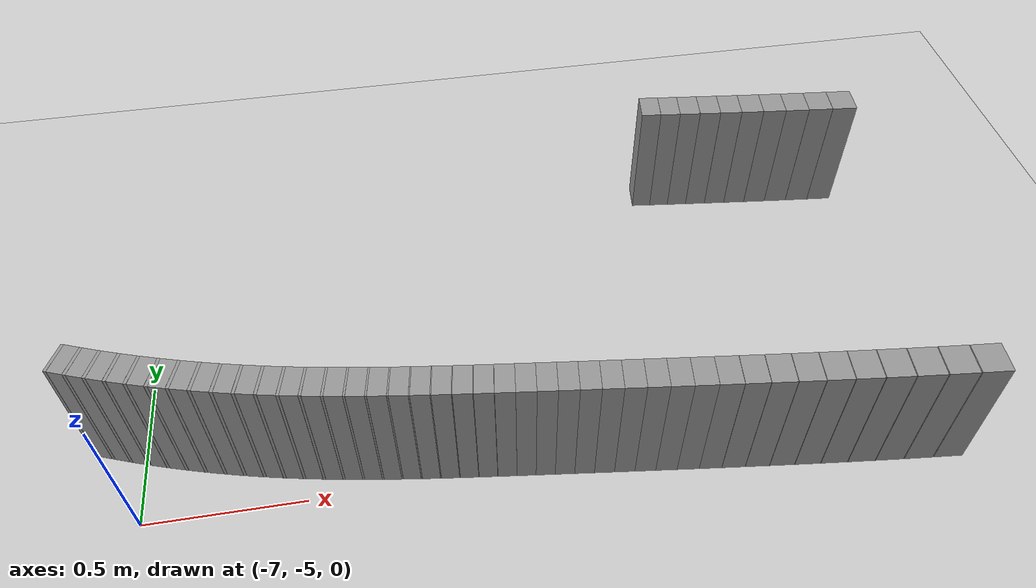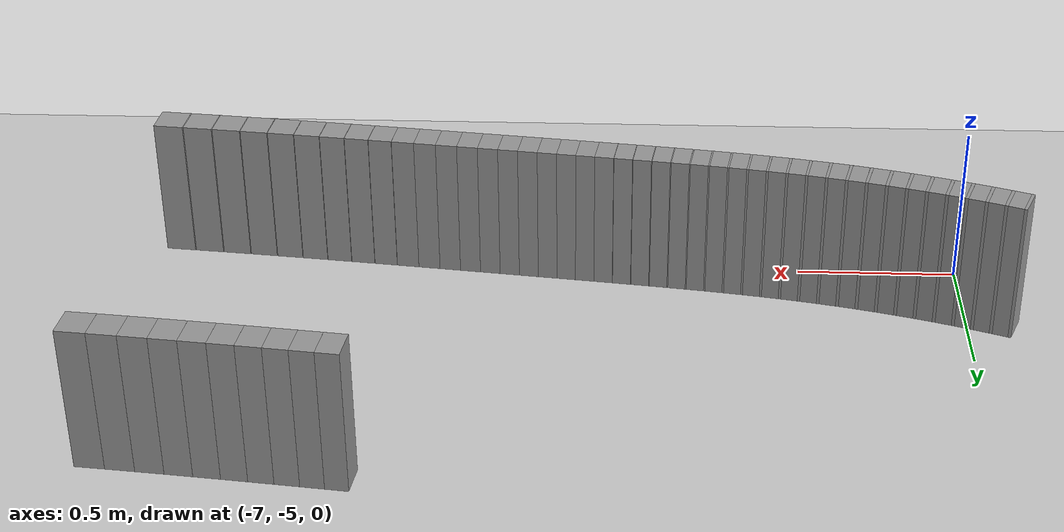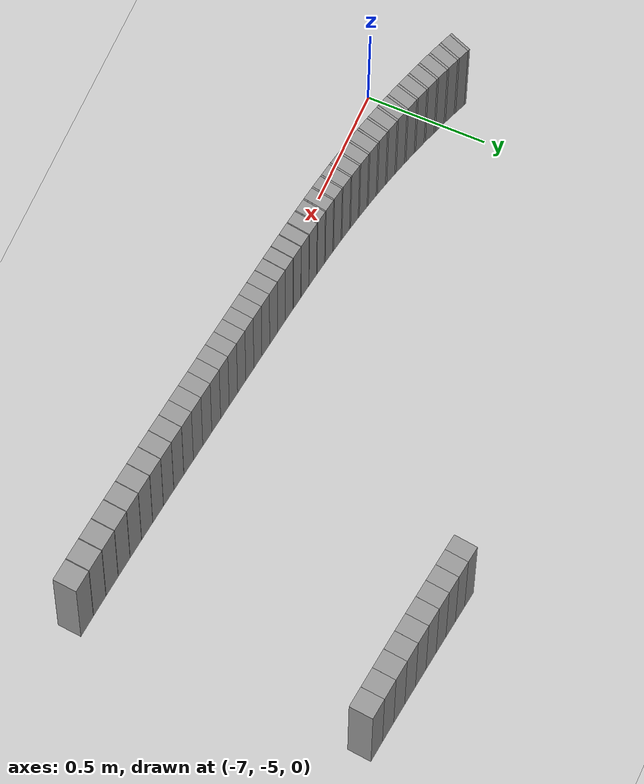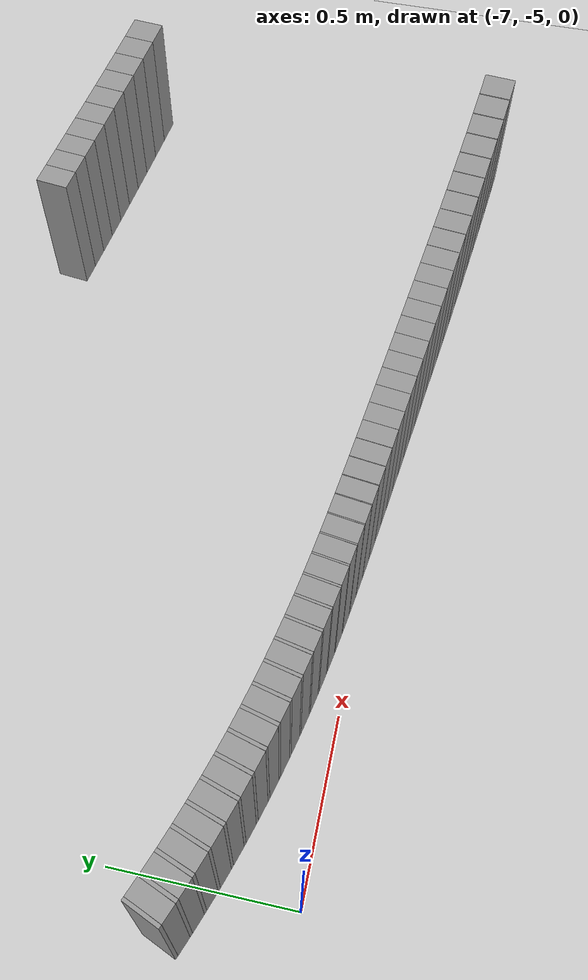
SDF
<sdf version="1.6">
 <world name="default">
  <include><uri>model://ground_plane</uri></include>
  <include><uri>model://sun</uri></include>
  <model name="wall_482_outward">
   <static>true</static>
   <link name="link">
    <collision name="collision">
     <geometry><box><size>0.06861094419086596 0.1 0.45</size></box></geometry>
    </collision>
    <visual name="visual">
     <geometry><box><size>0.06861094419086596 0.1 0.45</size></box></geometry>
     <material>
      <script><uri>file://media/materials/scripts/gazebo.material</uri><name>Gazebo/Gray</name></script>
     </material>
    </visual>
   </link>
   <pose>-5.172492075268798 -3.843492306528284 0.225 0 0 -0.11947311712528509</pose>
  </model>
  <model name="wall_483_outward">
   <static>true</static>
   <link name="link">
    <collision name="collision">
     <geometry><box><size>0.07060969709330193 0.1 0.45</size></box></geometry>
    </collision>
    <visual name="visual">
     <geometry><box><size>0.07060969709330193 0.1 0.45</size></box></geometry>
     <material>
      <script><uri>file://media/materials/scripts/gazebo.material</uri><name>Gazebo/Gray</name></script>
     </material>
    </visual>
   </link>
   <pose>-5.103373837394615 -3.8517545554409596 0.225 0 0 -0.11848774869774963</pose>
  </model>
  <model name="wall_484_outward">
   <static>true</static>
   <link name="link">
    <collision name="collision">
     <geometry><box><size>0.07279156137224302 0.1 0.45</size></box></geometry>
    </collision>
    <visual name="visual">
     <geometry><box><size>0.07279156137224302 0.1 0.45</size></box></geometry>
     <material>
      <script><uri>file://media/materials/scripts/gazebo.material</uri><name>Gazebo/Gray</name></script>
     </material>
    </visual>
   </link>
   <pose>-5.032170591647812 -3.8601852152544325 0.225 0 0 -0.11723934509404686</pose>
  </model>
  <model name="wall_485_outward">
   <static>true</static>
   <link name="link">
    <collision name="collision">
     <geometry><box><size>0.07512003442279466 0.1 0.45</size></box></geometry>
    </collision>
    <visual name="visual">
     <geometry><box><size>0.07512003442279466 0.1 0.45</size></box></geometry>
     <material>
      <script><uri>file://media/materials/scripts/gazebo.material</uri><name>Gazebo/Gray</name></script>
     </material>
    </visual>
   </link>
   <pose>-4.95871565192627 -3.868777568334581 0.225 0 0 -0.11567585199939497</pose>
  </model>
  <model name="wall_486_outward">
   <static>true</static>
   <link name="link">
    <collision name="collision">
     <geometry><box><size>0.07754253653207109 0.1 0.45</size></box></geometry>
    </collision>
    <visual name="visual">
     <geometry><box><size>0.07754253653207109 0.1 0.45</size></box></geometry>
     <material>
      <script><uri>file://media/materials/scripts/gazebo.material</uri><name>Gazebo/Gray</name></script>
     </material>
    </visual>
   </link>
   <pose>-4.882885987074841 -3.8775137991064437 0.225 0 0 -0.11376037422491422</pose>
  </model>
  <model name="wall_487_outward">
   <static>true</static>
   <link name="link">
    <collision name="collision">
     <geometry><box><size>0.0800005259456857 0.1 0.45</size></box></geometry>
    </collision>
    <visual name="visual">
     <geometry><box><size>0.0800005259456857 0.1 0.45</size></box></geometry>
     <material>
      <script><uri>file://media/materials/scripts/gazebo.material</uri><name>Gazebo/Gray</name></script>
     </material>
    </visual>
   </link>
   <pose>-4.804613143002355 -3.886362957032255 0.225 0 0 -0.111430504181167</pose>
  </model>
  <model name="wall_488_outward">
   <static>true</static>
   <link name="link">
    <collision name="collision">
     <geometry><box><size>0.08243139041206962 0.1 0.45</size></box></geometry>
    </collision>
    <visual name="visual">
     <geometry><box><size>0.08243139041206962 0.1 0.45</size></box></geometry>
     <material>
      <script><uri>file://media/materials/scripts/gazebo.material</uri><name>Gazebo/Gray</name></script>
     </material>
    </visual>
   </link>
   <pose>-4.723888277368331 -3.8952800834741588 0.225 0 0 -0.10864549361261396</pose>
  </model>
  <model name="wall_489_outward">
   <static>true</static>
   <link name="link">
    <collision name="collision">
     <geometry><box><size>0.08477118456679424 0.1 0.45</size></box></geometry>
    </collision>
    <visual name="visual">
     <geometry><box><size>0.08477118456679424 0.1 0.45</size></box></geometry>
     <material>
      <script><uri>file://media/materials/scripts/gazebo.material</uri><name>Gazebo/Gray</name></script>
     </material>
    </visual>
   </link>
   <pose>-4.640765049518221 -3.9042067529316924 0.225 0 0 -0.10536203316826591</pose>
  </model>
  <model name="wall_490_outward">
   <static>true</static>
   <link name="link">
    <collision name="collision">
     <geometry><box><size>0.08695825104490171 0.1 0.45</size></box></geometry>
    </collision>
    <visual name="visual">
     <geometry><box><size>0.08695825104490171 0.1 0.45</size></box></geometry>
     <material>
      <script><uri>file://media/materials/scripts/gazebo.material</uri><name>Gazebo/Gray</name></script>
     </material>
    </visual>
   </link>
   <pose>-4.5553593944780495 -3.913072255655973 0.225 0 0 -0.10155481413516705</pose>
  </model>
  <model name="wall_491_outward">
   <static>true</static>
   <link name="link">
    <collision name="collision">
     <geometry><box><size>0.08894354809368248 0.1 0.45</size></box></geometry>
    </collision>
    <visual name="visual">
     <geometry><box><size>0.08894354809368248 0.1 0.45</size></box></geometry>
     <material>
      <script><uri>file://media/materials/scripts/gazebo.material</uri><name>Gazebo/Gray</name></script>
     </material>
    </visual>
   </link>
   <pose>-4.467842444731072 -3.921796225169974 0.225 0 0 -0.0972042447169439</pose>
  </model>
  <model name="wall_595_inward">
   <static>true</static>
   <link name="link">
    <collision name="collision">
     <geometry><box><size>0.010058270836882448 0.1 0.45</size></box></geometry>
    </collision>
    <visual name="visual">
     <geometry><box><size>0.010058270836882448 0.1 0.45</size></box></geometry>
     <material>
      <script><uri>file://media/materials/scripts/gazebo.material</uri><name>Gazebo/Gray</name></script>
     </material>
    </visual>
   </link>
   <pose>-7.1435456109985065 -4.681929218626349 0.225 0 0 -0.3796555107484276</pose>
  </model>
  <model name="wall_596_inward">
   <static>true</static>
   <link name="link">
    <collision name="collision">
     <geometry><box><size>0.04899998314293597 0.1 0.45</size></box></geometry>
    </collision>
    <visual name="visual">
     <geometry><box><size>0.04899998314293597 0.1 0.45</size></box></geometry>
     <material>
      <script><uri>file://media/materials/scripts/gazebo.material</uri><name>Gazebo/Gray</name></script>
     </material>
    </visual>
   </link>
   <pose>-7.116043877710599 -4.692681676497608 0.225 0 0 -0.37127352023470606</pose>
  </model>
  <model name="wall_597_inward">
   <static>true</static>
   <link name="link">
    <collision name="collision">
     <geometry><box><size>0.010081163821849386 0.1 0.45</size></box></geometry>
    </collision>
    <visual name="visual">
     <geometry><box><size>0.010081163821849386 0.1 0.45</size></box></geometry>
     <material>
      <script><uri>file://media/materials/scripts/gazebo.material</uri><name>Gazebo/Gray</name></script>
     </material>
    </visual>
   </link>
   <pose>-7.0885008223423425 -4.703359544577519 0.225 0 0 -0.36287245156178727</pose>
  </model>
  <model name="wall_598_inward">
   <static>true</static>
   <link name="link">
    <collision name="collision">
     <geometry><box><size>0.04963032514261689 0.1 0.45</size></box></geometry>
    </collision>
    <visual name="visual">
     <geometry><box><size>0.04963032514261689 0.1 0.45</size></box></geometry>
     <material>
      <script><uri>file://media/materials/scripts/gazebo.material</uri><name>Gazebo/Gray</name></script>
     </material>
    </visual>
   </link>
   <pose>-7.0605160713188075 -4.713761965483187 0.225 0 0 -0.35447138288890684</pose>
  </model>
  <model name="wall_599_inward">
   <static>true</static>
   <link name="link">
    <collision name="collision">
     <geometry><box><size>0.01008082210487429 0.1 0.45</size></box></geometry>
    </collision>
    <visual name="visual">
     <geometry><box><size>0.01008082210487429 0.1 0.45</size></box></geometry>
     <material>
      <script><uri>file://media/materials/scripts/gazebo.material</uri><name>Gazebo/Gray</name></script>
     </material>
    </visual>
   </link>
   <pose>-7.032502085524978 -4.724084903495362 0.225 0 0 -0.3460705989902216</pose>
  </model>
  <model name="wall_600_inward">
   <static>true</static>
   <link name="link">
    <collision name="collision">
     <geometry><box><size>0.0502008784655813 0.1 0.45</size></box></geometry>
    </collision>
    <visual name="visual">
     <geometry><box><size>0.0502008784655813 0.1 0.45</size></box></geometry>
     <material>
      <script><uri>file://media/materials/scripts/gazebo.material</uri><name>Gazebo/Gray</name></script>
     </material>
    </visual>
   </link>
   <pose>-7.004077508980517 -4.734110140428442 0.225 0 0 -0.3376698150914799</pose>
  </model>
  <model name="wall_601_inward">
   <static>true</static>
   <link name="link">
    <collision name="collision">
     <geometry><box><size>0.010071953331509802 0.1 0.45</size></box></geometry>
    </collision>
    <visual name="visual">
     <geometry><box><size>0.010071953331509802 0.1 0.45</size></box></geometry>
     <material>
      <script><uri>file://media/materials/scripts/gazebo.material</uri><name>Gazebo/Gray</name></script>
     </material>
    </visual>
   </link>
   <pose>-6.975629085126776 -4.744054075181482 0.225 0 0 -0.32927642209786356</pose>
  </model>
  <model name="wall_602_inward">
   <static>true</static>
   <link name="link">
    <collision name="collision">
     <geometry><box><size>0.050702583329581816 0.1 0.45</size></box></geometry>
    </collision>
    <visual name="visual">
     <geometry><box><size>0.050702583329581816 0.1 0.45</size></box></geometry>
     <material>
      <script><uri>file://media/materials/scripts/gazebo.material</uri><name>Gazebo/Gray</name></script>
     </material>
    </visual>
   </link>
   <pose>-6.946806365723105 -4.753678415610709 0.225 0 0 -0.32088302910416455</pose>
  </model>
  <model name="wall_603_inward">
   <static>true</static>
   <link name="link">
    <collision name="collision">
     <geometry><box><size>0.010040300871055126 0.1 0.45</size></box></geometry>
    </collision>
    <visual name="visual">
     <geometry><box><size>0.010040300871055126 0.1 0.45</size></box></geometry>
     <material>
      <script><uri>file://media/materials/scripts/gazebo.material</uri><name>Gazebo/Gray</name></script>
     </material>
    </visual>
   </link>
   <pose>-6.917972083494023 -4.763217794733299 0.225 0 0 -0.31251601408709373</pose>
  </model>
  <model name="wall_604_inward">
   <static>true</static>
   <link name="link">
    <collision name="collision">
     <geometry><box><size>0.0511335097325698 0.1 0.45</size></box></geometry>
    </collision>
    <visual name="visual">
     <geometry><box><size>0.0511335097325698 0.1 0.45</size></box></geometry>
     <material>
      <script><uri>file://media/materials/scripts/gazebo.material</uri><name>Gazebo/Gray</name></script>
     </material>
    </visual>
   </link>
   <pose>-6.888801797998408 -4.772418024881566 0.225 0 0 -0.30414899907004933</pose>
  </model>
  <model name="wall_605_inward">
   <static>true</static>
   <link name="link">
    <collision name="collision">
     <geometry><box><size>0.009999772530434358 0.1 0.45</size></box></geometry>
    </collision>
    <visual name="visual">
     <geometry><box><size>0.009999772530434358 0.1 0.45</size></box></geometry>
     <material>
      <script><uri>file://media/materials/scripts/gazebo.material</uri><name>Gazebo/Gray</name></script>
     </material>
    </visual>
   </link>
   <pose>-6.859625787577816 -4.781532359147205 0.225 0 0 -0.295815758847655</pose>
  </model>
  <model name="wall_606_inward">
   <static>true</static>
   <link name="link">
    <collision name="collision">
     <geometry><box><size>0.05149814726125242 0.1 0.45</size></box></geometry>
    </collision>
    <visual name="visual">
     <geometry><box><size>0.05149814726125242 0.1 0.45</size></box></geometry>
     <material>
      <script><uri>file://media/materials/scripts/gazebo.material</uri><name>Gazebo/Gray</name></script>
     </material>
    </visual>
   </link>
   <pose>-6.8301507229937535 -4.790290792925335 0.225 0 0 -0.2874825186252262</pose>
  </model>
  <model name="wall_607_inward">
   <static>true</static>
   <link name="link">
    <collision name="collision">
     <geometry><box><size>0.009927208510987197 0.1 0.45</size></box></geometry>
    </collision>
    <visual name="visual">
     <geometry><box><size>0.009927208510987197 0.1 0.45</size></box></geometry>
     <material>
      <script><uri>file://media/materials/scripts/gazebo.material</uri><name>Gazebo/Gray</name></script>
     </material>
    </visual>
   </link>
   <pose>-6.800686991492103 -4.798959608412943 0.225 0 0 -0.27920975050352254</pose>
  </model>
  <model name="wall_608_inward">
   <static>true</static>
   <link name="link">
    <collision name="collision">
     <geometry><box><size>0.05180707902319999 0.1 0.45</size></box></geometry>
    </collision>
    <visual name="visual">
     <geometry><box><size>0.05180707902319999 0.1 0.45</size></box></geometry>
     <material>
      <script><uri>file://media/materials/scripts/gazebo.material</uri><name>Gazebo/Gray</name></script>
     </material>
    </visual>
   </link>
   <pose>-6.77095701746246 -4.8072602354426355 0.225 0 0 -0.2709369823817495</pose>
  </model>
  <model name="wall_609_inward">
   <static>true</static>
   <link name="link">
    <collision name="collision">
     <geometry><box><size>0.009806839829467652 0.1 0.45</size></box></geometry>
    </collision>
    <visual name="visual">
     <geometry><box><size>0.009806839829467652 0.1 0.45</size></box></geometry>
     <material>
      <script><uri>file://media/materials/scripts/gazebo.material</uri><name>Gazebo/Gray</name></script>
     </material>
    </visual>
   </link>
   <pose>-6.741263311934598 -4.815466581638888 0.225 0 0 -0.262764524885656</pose>
  </model>
  <model name="wall_610_inward">
   <static>true</static>
   <link name="link">
    <collision name="collision">
     <geometry><box><size>0.05207625270528953 0.1 0.45</size></box></geometry>
    </collision>
    <visual name="visual">
     <geometry><box><size>0.05207625270528953 0.1 0.45</size></box></geometry>
     <material>
      <script><uri>file://media/materials/scripts/gazebo.material</uri><name>Gazebo/Gray</name></script>
     </material>
    </visual>
   </link>
   <pose>-6.711329382697597 -4.82329796967337 0.225 0 0 -0.25459206738965473</pose>
  </model>
  <model name="wall_611_inward">
   <static>true</static>
   <link name="link">
    <collision name="collision">
     <geometry><box><size>0.009630620012981188 0.1 0.45</size></box></geometry>
    </collision>
    <visual name="visual">
     <geometry><box><size>0.009630620012981188 0.1 0.45</size></box></geometry>
     <material>
      <script><uri>file://media/materials/scripts/gazebo.material</uri><name>Gazebo/Gray</name></script>
     </material>
    </visual>
   </link>
   <pose>-6.6814608897011745 -4.831030988842068 0.225 0 0 -0.24656646455720027</pose>
  </model>
  <model name="wall_612_inward">
   <static>true</static>
   <link name="link">
    <collision name="collision">
     <geometry><box><size>0.05232601574736666 0.1 0.45</size></box></geometry>
    </collision>
    <visual name="visual">
     <geometry><box><size>0.05232601574736666 0.1 0.45</size></box></geometry>
     <material>
      <script><uri>file://media/materials/scripts/gazebo.material</uri><name>Gazebo/Gray</name></script>
     </material>
    </visual>
   </link>
   <pose>-6.651369042637373 -4.838388216880865 0.225 0 0 -0.23854086172474392</pose>
  </model>
  <model name="wall_613_inward">
   <static>true</static>
   <link name="link">
    <collision name="collision">
     <geometry><box><size>0.009363183845680651 0.1 0.45</size></box></geometry>
    </collision>
    <visual name="visual">
     <geometry><box><size>0.009363183845680651 0.1 0.45</size></box></geometry>
     <material>
      <script><uri>file://media/materials/scripts/gazebo.material</uri><name>Gazebo/Gray</name></script>
     </material>
    </visual>
   </link>
   <pose>-6.621389352521117 -4.8456408067629955 0.225 0 0 -0.2307381293451404</pose>
  </model>
  <model name="wall_614_inward">
   <static>true</static>
   <link name="link">
    <collision name="collision">
     <geometry><box><size>0.052575151100994526 0.1 0.45</size></box></geometry>
    </collision>
    <visual name="visual">
     <geometry><box><size>0.052575151100994526 0.1 0.45</size></box></geometry>
     <material>
      <script><uri>file://media/materials/scripts/gazebo.material</uri><name>Gazebo/Gray</name></script>
     </material>
    </visual>
   </link>
   <pose>-6.591194804980662 -4.852523476315666 0.225 0 0 -0.22293539696546277</pose>
  </model>
  <model name="wall_615_inward">
   <static>true</static>
   <link name="link">
    <collision name="collision">
     <geometry><box><size>0.0089878749266949 0.1 0.45</size></box></geometry>
    </collision>
    <visual name="visual">
     <geometry><box><size>0.0089878749266949 0.1 0.45</size></box></geometry>
     <material>
      <script><uri>file://media/materials/scripts/gazebo.material</uri><name>Gazebo/Gray</name></script>
     </material>
    </visual>
   </link>
   <pose>-6.561167733807983 -4.859296209363276 0.225 0 0 -0.21544543116269238</pose>
  </model>
  <model name="wall_616_inward">
   <static>true</static>
   <link name="link">
    <collision name="collision">
     <geometry><box><size>0.052845383177155016 0.1 0.45</size></box></geometry>
    </collision>
    <visual name="visual">
     <geometry><box><size>0.052845383177155016 0.1 0.45</size></box></geometry>
     <material>
      <script><uri>file://media/materials/scripts/gazebo.material</uri><name>Gazebo/Gray</name></script>
     </material>
    </visual>
   </link>
   <pose>-6.530924273843324 -4.865712159796264 0.225 0 0 -0.2079554653600325</pose>
  </model>
  <model name="wall_617_inward">
   <static>true</static>
   <link name="link">
    <collision name="collision">
     <geometry><box><size>0.008489078640179447 0.1 0.45</size></box></geometry>
    </collision>
    <visual name="visual">
     <geometry><box><size>0.008489078640179447 0.1 0.45</size></box></geometry>
     <material>
      <script><uri>file://media/materials/scripts/gazebo.material</uri><name>Gazebo/Gray</name></script>
     </material>
    </visual>
   </link>
   <pose>-6.500911670743526 -4.872014309753348 0.225 0 0 -0.2008811741538712</pose>
  </model>
  <model name="wall_618_inward">
   <static>true</static>
   <link name="link">
    <collision name="collision">
     <geometry><box><size>0.053154942233466625 0.1 0.45</size></box></geometry>
    </collision>
    <visual name="visual">
     <geometry><box><size>0.053154942233466625 0.1 0.45</size></box></geometry>
     <material>
      <script><uri>file://media/materials/scripts/gazebo.material</uri><name>Gazebo/Gray</name></script>
     </material>
    </visual>
   </link>
   <pose>-6.470672592406055 -4.877979946608857 0.225 0 0 -0.19380688294765488</pose>
  </model>
  <model name="wall_619_inward">
   <static>true</static>
   <link name="link">
    <collision name="collision">
     <geometry><box><size>0.007868716476936011 0.1 0.45</size></box></geometry>
    </collision>
    <visual name="visual">
     <geometry><box><size>0.007868716476936011 0.1 0.45</size></box></geometry>
     <material>
      <script><uri>file://media/materials/scripts/gazebo.material</uri><name>Gazebo/Gray</name></script>
     </material>
    </visual>
   </link>
   <pose>-6.4407271150105565 -4.883831067701468 0.225 0 0 -0.18724957222473335</pose>
  </model>
  <model name="wall_620_inward">
   <static>true</static>
   <link name="link">
    <collision name="collision">
     <geometry><box><size>0.05351229056296684 0.1 0.45</size></box></geometry>
    </collision>
    <visual name="visual">
     <geometry><box><size>0.05351229056296684 0.1 0.45</size></box></geometry>
     <material>
      <script><uri>file://media/materials/scripts/gazebo.material</uri><name>Gazebo/Gray</name></script>
     </material>
    </visual>
   </link>
   <pose>-6.4105409870593935 -4.8893718401459525 0.225 0 0 -0.1806922615018396</pose>
  </model>
  <model name="wall_621_inward">
   <static>true</static>
   <link name="link">
    <collision name="collision">
     <geometry><box><size>0.007124851377536794 0.1 0.45</size></box></geometry>
    </collision>
    <visual name="visual">
     <geometry><box><size>0.007124851377536794 0.1 0.45</size></box></geometry>
     <material>
      <script><uri>file://media/materials/scripts/gazebo.material</uri><name>Gazebo/Gray</name></script>
     </material>
    </visual>
   </link>
   <pose>-6.380712277552024 -4.894799590566242 0.225 0 0 -0.17475485046890576</pose>
  </model>
  <model name="wall_622_inward">
   <static>true</static>
   <link name="link">
    <collision name="collision">
     <geometry><box><size>0.053925934971024755 0.1 0.45</size></box></geometry>
    </collision>
    <visual name="visual">
     <geometry><box><size>0.053925934971024755 0.1 0.45</size></box></geometry>
     <material>
      <script><uri>file://media/materials/scripts/gazebo.material</uri><name>Gazebo/Gray</name></script>
     </material>
    </visual>
   </link>
   <pose>-6.350624444606686 -4.899949207148652 0.225 0 0 -0.16881743943584918</pose>
  </model>
  <model name="wall_623_inward">
   <static>true</static>
   <link name="link">
    <collision name="collision">
     <geometry><box><size>0.006295543869221523 0.1 0.45</size></box></geometry>
    </collision>
    <visual name="visual">
     <geometry><box><size>0.006295543869221523 0.1 0.45</size></box></geometry>
     <material>
      <script><uri>file://media/materials/scripts/gazebo.material</uri><name>Gazebo/Gray</name></script>
     </material>
    </visual>
   </link>
   <pose>-6.320939023115434 -4.904992028113722 0.225 0 0 -0.16357112881177788</pose>
  </model>
  <model name="wall_624_inward">
   <static>true</static>
   <link name="link">
    <collision name="collision">
     <geometry><box><size>0.054394564290443544 0.1 0.45</size></box></geometry>
    </collision>
    <visual name="visual">
     <geometry><box><size>0.054394564290443544 0.1 0.45</size></box></geometry>
     <material>
      <script><uri>file://media/materials/scripts/gazebo.material</uri><name>Gazebo/Gray</name></script>
     </material>
    </visual>
   </link>
   <pose>-6.290976147612493 -4.909792657486527 0.225 0 0 -0.15832481818778754</pose>
  </model>
  <model name="wall_625_inward">
   <static>true</static>
   <link name="link">
    <collision name="collision">
     <geometry><box><size>0.005397315730689346 0.1 0.45</size></box></geometry>
    </collision>
    <visual name="visual">
     <geometry><box><size>0.005397315730689346 0.1 0.45</size></box></geometry>
     <material>
      <script><uri>file://media/materials/scripts/gazebo.material</uri><name>Gazebo/Gray</name></script>
     </material>
    </visual>
   </link>
   <pose>-6.261452235790189 -4.914494186495452 0.225 0 0 -0.15382703991381555</pose>
  </model>
  <model name="wall_626_inward">
   <static>true</static>
   <link name="link">
    <collision name="collision">
     <geometry><box><size>0.05491570029096814 0.1 0.45</size></box></geometry>
    </collision>
    <visual name="visual">
     <geometry><box><size>0.05491570029096814 0.1 0.45</size></box></geometry>
     <material>
      <script><uri>file://media/materials/scripts/gazebo.material</uri><name>Gazebo/Gray</name></script>
     </material>
    </visual>
   </link>
   <pose>-6.231633169672511 -4.918992716505225 0.225 0 0 -0.14932926163997082</pose>
  </model>
  <model name="wall_627_inward">
   <static>true</static>
   <link name="link">
    <collision name="collision">
     <geometry><box><size>0.004492373594564669 0.1 0.45</size></box></geometry>
    </collision>
    <visual name="visual">
     <geometry><box><size>0.004492373594564669 0.1 0.45</size></box></geometry>
     <material>
      <script><uri>file://media/materials/scripts/gazebo.material</uri><name>Gazebo/Gray</name></script>
     </material>
    </visual>
   </link>
   <pose>-6.202258470829376 -4.923403613715022 0.225 0 0 -0.14558560823341316</pose>
  </model>
  <model name="wall_628_inward">
   <static>true</static>
   <link name="link">
    <collision name="collision">
     <geometry><box><size>0.05547575044664125 0.1 0.45</size></box></geometry>
    </collision>
    <visual name="visual">
     <geometry><box><size>0.05547575044664125 0.1 0.45</size></box></geometry>
     <material>
      <script><uri>file://media/materials/scripts/gazebo.material</uri><name>Gazebo/Gray</name></script>
     </material>
    </visual>
   </link>
   <pose>-6.172576734539797 -4.927650687166139 0.225 0 0 -0.1418419548266814</pose>
  </model>
  <model name="wall_629_inward">
   <static>true</static>
   <link name="link">
    <collision name="collision">
     <geometry><box><size>0.0036201946759743904 0.1 0.45</size></box></geometry>
    </collision>
    <visual name="visual">
     <geometry><box><size>0.0036201946759743904 0.1 0.45</size></box></geometry>
     <material>
      <script><uri>file://media/materials/scripts/gazebo.material</uri><name>Gazebo/Gray</name></script>
     </material>
    </visual>
   </link>
   <pose>-6.143324740047198 -4.931822382712253 0.225 0 0 -0.13882512135382263</pose>
  </model>
  <model name="wall_630_inward">
   <static>true</static>
   <link name="link">
    <collision name="collision">
     <geometry><box><size>0.05606769283922241 0.1 0.45</size></box></geometry>
    </collision>
    <visual name="visual">
     <geometry><box><size>0.05606769283922241 0.1 0.45</size></box></geometry>
     <material>
      <script><uri>file://media/materials/scripts/gazebo.material</uri><name>Gazebo/Gray</name></script>
     </material>
    </visual>
   </link>
   <pose>-6.113756340263109 -4.935868399442299 0.225 0 0 -0.13580828788104157</pose>
  </model>
  <model name="wall_631_inward">
   <static>true</static>
   <link name="link">
    <collision name="collision">
     <geometry><box><size>0.002798552228215767 0.1 0.45</size></box></geometry>
    </collision>
    <visual name="visual">
     <geometry><box><size>0.002798552228215767 0.1 0.45</size></box></geometry>
     <material>
      <script><uri>file://media/materials/scripts/gazebo.material</uri><name>Gazebo/Gray</name></script>
     </material>
    </visual>
   </link>
   <pose>-6.084593793401583 -4.939850151479408 0.225 0 0 -0.13347615891013795</pose>
  </model>
  <model name="wall_632_inward">
   <static>true</static>
   <link name="link">
    <collision name="collision">
     <geometry><box><size>0.05667864414720004 0.1 0.45</size></box></geometry>
    </collision>
    <visual name="visual">
     <geometry><box><size>0.05667864414720004 0.1 0.45</size></box></geometry>
     <material>
      <script><uri>file://media/materials/scripts/gazebo.material</uri><name>Gazebo/Gray</name></script>
     </material>
    </visual>
   </link>
   <pose>-6.055110992862685 -4.943742256164478 0.225 0 0 -0.13114402993933602</pose>
  </model>
  <model name="wall_633_inward">
   <static>true</static>
   <link name="link">
    <collision name="collision">
     <geometry><box><size>0.002078476484569882 0.1 0.45</size></box></geometry>
    </collision>
    <visual name="visual">
     <geometry><box><size>0.002078476484569882 0.1 0.45</size></box></geometry>
     <material>
      <script><uri>file://media/materials/scripts/gazebo.material</uri><name>Gazebo/Gray</name></script>
     </material>
    </visual>
   </link>
   <pose>-6.025984474179656 -4.947582259717329 0.225 0 0 -0.12941196533640195</pose>
  </model>
  <model name="wall_634_inward">
   <static>true</static>
   <link name="link">
    <collision name="collision">
     <geometry><box><size>0.057303449651078926 0.1 0.45</size></box></geometry>
    </collision>
    <visual name="visual">
     <geometry><box><size>0.057303449651078926 0.1 0.45</size></box></geometry>
     <material>
      <script><uri>file://media/materials/scripts/gazebo.material</uri><name>Gazebo/Gray</name></script>
     </material>
    </visual>
   </link>
   <pose>-5.996535426633081 -4.95136469242197 0.225 0 0 -0.12767990073296173</pose>
  </model>
  <model name="wall_635_inward">
   <static>true</static>
   <link name="link">
    <collision name="collision">
     <geometry><box><size>0.001460985305307275 0.1 0.45</size></box></geometry>
    </collision>
    <visual name="visual">
     <geometry><box><size>0.001460985305307275 0.1 0.45</size></box></geometry>
     <material>
      <script><uri>file://media/materials/scripts/gazebo.material</uri><name>Gazebo/Gray</name></script>
     </material>
    </visual>
   </link>
   <pose>-5.967392268025195 -4.955105144168438 0.225 0 0 -0.12646241267755057</pose>
  </model>
  <model name="wall_636_inward">
   <static>true</static>
   <link name="link">
    <collision name="collision">
     <geometry><box><size>0.05793964728109484 0.1 0.45</size></box></geometry>
    </collision>
    <visual name="visual">
     <geometry><box><size>0.05793964728109484 0.1 0.45</size></box></geometry>
     <material>
      <script><uri>file://media/materials/scripts/gazebo.material</uri><name>Gazebo/Gray</name></script>
     </material>
    </visual>
   </link>
   <pose>-5.937924702927958 -4.958816122986477 0.225 0 0 -0.1252449246225642</pose>
  </model>
  <model name="wall_637_inward">
   <static>true</static>
   <link name="link">
    <collision name="collision">
     <geometry><box><size>0.0009703147702486365 0.1 0.45</size></box></geometry>
    </collision>
    <visual name="visual">
     <geometry><box><size>0.0009703147702486365 0.1 0.45</size></box></geometry>
     <material>
      <script><uri>file://media/materials/scripts/gazebo.material</uri><name>Gazebo/Gray</name></script>
     </material>
    </visual>
   </link>
   <pose>-5.908700390929896 -4.9624951835014866 0.225 0 0 -0.12443632889298425</pose>
  </model>
  <model name="wall_638_inward">
   <static>true</static>
   <link name="link">
    <collision name="collision">
     <geometry><box><size>0.059190106123740885 0.1 0.45</size></box></geometry>
    </collision>
    <visual name="visual">
     <geometry><box><size>0.059190106123740885 0.1 0.45</size></box></geometry>
     <material>
      <script><uri>file://media/materials/scripts/gazebo.material</uri><name>Gazebo/Gray</name></script>
     </material>
    </visual>
   </link>
   <pose>-5.878849788201444 -4.9662047074303 0.225 0 0 -0.12362269239814651</pose>
  </model>
  <model name="wall_639_inward">
   <static>true</static>
   <link name="link">
    <collision name="collision">
     <geometry><box><size>0.05961670258566631 0.1 0.45</size></box></geometry>
    </collision>
    <visual name="visual">
     <geometry><box><size>0.05961670258566631 0.1 0.45</size></box></geometry>
     <material>
      <script><uri>file://media/materials/scripts/gazebo.material</uri><name>Gazebo/Gray</name></script>
     </material>
    </visual>
   </link>
   <pose>-5.819896085952724 -4.973500224458627 0.225 0 0 -0.12262882824143165</pose>
  </model>
  <model name="wall_640_inward">
   <static>true</static>
   <link name="link">
    <collision name="collision">
     <geometry><box><size>0.0601885552471523 0.1 0.45</size></box></geometry>
    </collision>
    <visual name="visual">
     <geometry><box><size>0.0601885552471523 0.1 0.45</size></box></geometry>
     <material>
      <script><uri>file://media/materials/scripts/gazebo.material</uri><name>Gazebo/Gray</name></script>
     </material>
    </visual>
   </link>
   <pose>-5.760441205709391 -4.980810619513761 0.225 0 0 -0.12205977672456034</pose>
  </model>
  <model name="wall_641_inward">
   <static>true</static>
   <link name="link">
    <collision name="collision">
     <geometry><box><size>0.06093384997769743 0.1 0.45</size></box></geometry>
    </collision>
    <visual name="visual">
     <geometry><box><size>0.06093384997769743 0.1 0.45</size></box></geometry>
     <material>
      <script><uri>file://media/materials/scripts/gazebo.material</uri><name>Gazebo/Gray</name></script>
     </material>
    </visual>
   </link>
   <pose>-5.700329468731349 -4.988175282210639 0.225 0 0 -0.12175943541775301</pose>
  </model>
  <model name="wall_642_inward">
   <static>true</static>
   <link name="link">
    <collision name="collision">
     <geometry><box><size>0.061854268118960345 0.1 0.45</size></box></geometry>
    </collision>
    <visual name="visual">
     <geometry><box><size>0.061854268118960345 0.1 0.45</size></box></geometry>
     <material>
      <script><uri>file://media/materials/scripts/gazebo.material</uri><name>Gazebo/Gray</name></script>
     </material>
    </visual>
   </link>
   <pose>-5.639389245594904 -4.99562643366885 0.225 0 0 -0.12157383969642524</pose>
  </model>
  <model name="wall_643_inward">
   <static>true</static>
   <link name="link">
    <collision name="collision">
     <geometry><box><size>0.06296970776249129 0.1 0.45</size></box></geometry>
    </collision>
    <visual name="visual">
     <geometry><box><size>0.06296970776249129 0.1 0.45</size></box></geometry>
     <material>
      <script><uri>file://media/materials/scripts/gazebo.material</uri><name>Gazebo/Gray</name></script>
     </material>
    </visual>
   </link>
   <pose>-5.577437242410217 -5.003189866047867 0.225 0 0 -0.12139608773903851</pose>
  </model>
  <model name="wall_644_inward">
   <static>true</static>
   <link name="link">
    <collision name="collision">
     <geometry><box><size>0.06429807669470437 0.1 0.45</size></box></geometry>
    </collision>
    <visual name="visual">
     <geometry><box><size>0.06429807669470437 0.1 0.45</size></box></geometry>
     <material>
      <script><uri>file://media/materials/scripts/gazebo.material</uri><name>Gazebo/Gray</name></script>
     </material>
    </visual>
   </link>
   <pose>-5.514270691102416 -5.0108878510473165 0.225 0 0 -0.12114663168866177</pose>
  </model>
  <model name="wall_645_inward">
   <static>true</static>
   <link name="link">
    <collision name="collision">
     <geometry><box><size>0.06585611473231087 0.1 0.45</size></box></geometry>
    </collision>
    <visual name="visual">
     <geometry><box><size>0.06585611473231087 0.1 0.45</size></box></geometry>
     <material>
      <script><uri>file://media/materials/scripts/gazebo.material</uri><name>Gazebo/Gray</name></script>
     </material>
    </visual>
   </link>
   <pose>-5.449669062309368 -5.0187400986622315 0.225 0 0 -0.12076872345778203</pose>
  </model>
  <model name="wall_646_inward">
   <static>true</static>
   <link name="link">
    <collision name="collision">
     <geometry><box><size>0.06766523106183109 0.1 0.45</size></box></geometry>
    </collision>
    <visual name="visual">
     <geometry><box><size>0.06766523106183109 0.1 0.45</size></box></geometry>
     <material>
      <script><uri>file://media/materials/scripts/gazebo.material</uri><name>Gazebo/Gray</name></script>
     </material>
    </visual>
   </link>
   <pose>-5.383392433580115 -5.026764785457508 0.225 0 0 -0.12022298796137597</pose>
  </model>
  <model name="wall_647_inward">
   <static>true</static>
   <link name="link">
    <collision name="collision">
     <geometry><box><size>0.06972348989229203 0.1 0.45</size></box></geometry>
    </collision>
    <visual name="visual">
     <geometry><box><size>0.06972348989229203 0.1 0.45</size></box></geometry>
     <material>
      <script><uri>file://media/materials/scripts/gazebo.material</uri><name>Gazebo/Gray</name></script>
     </material>
    </visual>
   </link>
   <pose>-5.315190771804769 -5.034977447742255 0.225 0 0 -0.11946893940472615</pose>
  </model>
  <model name="wall_648_inward">
   <static>true</static>
   <link name="link">
    <collision name="collision">
     <geometry><box><size>0.0712798287747869 0.1 0.45</size></box></geometry>
    </collision>
    <visual name="visual">
     <geometry><box><size>0.0712798287747869 0.1 0.45</size></box></geometry>
     <material>
      <script><uri>file://media/materials/scripts/gazebo.material</uri><name>Gazebo/Gray</name></script>
     </material>
    </visual>
   </link>
   <pose>-5.245187492533433 -5.043345462074981 0.225 0 0 -0.11848774869774982</pose>
  </model>
  <model name="wall_649_inward">
   <static>true</static>
   <link name="link">
    <collision name="collision">
     <geometry><box><size>0.0007490421135819353 0.1 0.45</size></box></geometry>
    </collision>
    <visual name="visual">
     <geometry><box><size>0.0007490421135819353 0.1 0.45</size></box></geometry>
     <material>
      <script><uri>file://media/materials/scripts/gazebo.material</uri><name>Gazebo/Gray</name></script>
     </material>
    </visual>
   </link>
   <pose>-5.20942554346249 -5.047602521366306 0.225 0 0 -0.11786354689560188</pose>
  </model>
  <model name="wall_650_inward">
   <static>true</static>
   <link name="link">
    <collision name="collision">
     <geometry><box><size>0.07363513052605218 0.1 0.45</size></box></geometry>
    </collision>
    <visual name="visual">
     <geometry><box><size>0.07363513052605218 0.1 0.45</size></box></geometry>
     <material>
      <script><uri>file://media/materials/scripts/gazebo.material</uri><name>Gazebo/Gray</name></script>
     </material>
    </visual>
   </link>
   <pose>-5.172488795724191 -5.051953147294313 0.225 0 0 -0.11723934509404418</pose>
  </model>
  <model name="wall_651_inward">
   <static>true</static>
   <link name="link">
    <collision name="collision">
     <geometry><box><size>0.00093809576124192 0.1 0.45</size></box></geometry>
    </collision>
    <visual name="visual">
     <geometry><box><size>0.00093809576124192 0.1 0.45</size></box></geometry>
     <material>
      <script><uri>file://media/materials/scripts/gazebo.material</uri><name>Gazebo/Gray</name></script>
     </material>
    </visual>
   </link>
   <pose>-5.13545809989121 -5.0563142337753995 0.225 0 0 -0.11645759854707864</pose>
  </model>
  <model name="wall_652_inward">
   <static>true</static>
   <link name="link">
    <collision name="collision">
     <geometry><box><size>0.07616372595491361 0.1 0.45</size></box></geometry>
    </collision>
    <visual name="visual">
     <geometry><box><size>0.07616372595491361 0.1 0.45</size></box></geometry>
     <material>
      <script><uri>file://media/materials/scripts/gazebo.material</uri><name>Gazebo/Gray</name></script>
     </material>
    </visual>
   </link>
   <pose>-5.097164867015579 -5.060764068941344 0.225 0 0 -0.11567585199939298</pose>
  </model>
  <model name="wall_653_inward">
   <static>true</static>
   <link name="link">
    <collision name="collision">
     <geometry><box><size>0.0011492864889863826 0.1 0.45</size></box></geometry>
    </collision>
    <visual name="visual">
     <geometry><box><size>0.0011492864889863826 0.1 0.45</size></box></geometry>
     <material>
      <script><uri>file://media/materials/scripts/gazebo.material</uri><name>Gazebo/Gray</name></script>
     </material>
    </visual>
   </link>
   <pose>-5.058766638746369 -5.065225180798314 0.225 0 0 -0.11471811311149475</pose>
  </model>
  <model name="wall_654_inward">
   <static>true</static>
   <link name="link">
    <collision name="collision">
     <geometry><box><size>0.07881614136927247 0.1 0.45</size></box></geometry>
    </collision>
    <visual name="visual">
     <geometry><box><size>0.07881614136927247 0.1 0.45</size></box></geometry>
     <material>
      <script><uri>file://media/materials/scripts/gazebo.material</uri><name>Gazebo/Gray</name></script>
     </material>
    </visual>
   </link>
   <pose>-5.0190424252616985 -5.069764371848599 0.225 0 0 -0.11376037422491479</pose>
  </model>
  <model name="wall_655_inward">
   <static>true</static>
   <link name="link">
    <collision name="collision">
     <geometry><box><size>0.0013979217100662117 0.1 0.45</size></box></geometry>
    </collision>
    <visual name="visual">
     <geometry><box><size>0.0013979217100662117 0.1 0.45</size></box></geometry>
     <material>
      <script><uri>file://media/materials/scripts/gazebo.material</uri><name>Gazebo/Gray</name></script>
     </material>
    </visual>
   </link>
   <pose>-4.9791945430290605 -5.074316319027294 0.225 0 0 -0.11259543920290786</pose>
  </model>
  <model name="wall_656_inward">
   <static>true</static>
   <link name="link">
    <collision name="collision">
     <geometry><box><size>0.08153499098573415 0.1 0.45</size></box></geometry>
    </collision>
    <visual name="visual">
     <geometry><box><size>0.08153499098573415 0.1 0.45</size></box></geometry>
     <material>
      <script><uri>file://media/materials/scripts/gazebo.material</uri><name>Gazebo/Gray</name></script>
     </material>
    </visual>
   </link>
   <pose>-4.937985350887885 -5.078928200037724 0.225 0 0 -0.11143050418117129</pose>
  </model>
  <model name="wall_657_inward">
   <static>true</static>
   <link name="link">
    <collision name="collision">
     <geometry><box><size>0.0016710058011022164 0.1 0.45</size></box></geometry>
    </collision>
    <visual name="visual">
     <geometry><box><size>0.0016710058011022164 0.1 0.45</size></box></geometry>
     <material>
      <script><uri>file://media/materials/scripts/gazebo.material</uri><name>Gazebo/Gray</name></script>
     </material>
    </visual>
   </link>
   <pose>-4.896640243944091 -5.083553299072509 0.225 0 0 -0.11003799889699575</pose>
  </model>
  <model name="wall_658_inward">
   <static>true</static>
   <link name="link">
    <collision name="collision">
     <geometry><box><size>0.08425193314078663 0.1 0.45</size></box></geometry>
    </collision>
    <visual name="visual">
     <geometry><box><size>0.08425193314078663 0.1 0.45</size></box></geometry>
     <material>
      <script><uri>file://media/materials/scripts/gazebo.material</uri><name>Gazebo/Gray</name></script>
     </material>
    </visual>
   </link>
   <pose>-4.853932207346611 -5.088212848497404 0.225 0 0 -0.1086454936126116</pose>
  </model>
  <model name="wall_659_inward">
   <static>true</static>
   <link name="link">
    <collision name="collision">
     <geometry><box><size>0.001970075381624578 0.1 0.45</size></box></geometry>
    </collision>
    <visual name="visual">
     <geometry><box><size>0.001970075381624578 0.1 0.45</size></box></geometry>
     <material>
      <script><uri>file://media/materials/scripts/gazebo.material</uri><name>Gazebo/Gray</name></script>
     </material>
    </visual>
   </link>
   <pose>-4.811075216641613 -5.092885847992267 0.225 0 0 -0.10700376339047753</pose>
  </model>
  <model name="wall_660_inward">
   <static>true</static>
   <link name="link">
    <collision name="collision">
     <geometry><box><size>0.08689839067476902 0.1 0.45</size></box></geometry>
    </collision>
    <visual name="visual">
     <geometry><box><size>0.08689839067476902 0.1 0.45</size></box></geometry>
     <material>
      <script><uri>file://media/materials/scripts/gazebo.material</uri><name>Gazebo/Gray</name></script>
     </material>
    </visual>
   </link>
   <pose>-4.766887562650328 -5.09756047997726 0.225 0 0 -0.10536203316826491</pose>
  </model>
  <model name="wall_661_inward">
   <static>true</static>
   <link name="link">
    <collision name="collision">
     <geometry><box><size>0.0022843300402247886 0.1 0.45</size></box></geometry>
    </collision>
    <visual name="visual">
     <geometry><box><size>0.0022843300402247886 0.1 0.45</size></box></geometry>
     <material>
      <script><uri>file://media/materials/scripts/gazebo.material</uri><name>Gazebo/Gray</name></script>
     </material>
    </visual>
   </link>
   <pose>-4.722543254677776 -5.102247866150381 0.225 0 0 -0.10345842365173374</pose>
  </model>
  <model name="wall_662_inward">
   <static>true</static>
   <link name="link">
    <collision name="collision">
     <geometry><box><size>0.08940559101858266 0.1 0.45</size></box></geometry>
    </collision>
    <visual name="visual">
     <geometry><box><size>0.08940559101858266 0.1 0.45</size></box></geometry>
     <material>
      <script><uri>file://media/materials/scripts/gazebo.material</uri><name>Gazebo/Gray</name></script>
     </material>
    </visual>
   </link>
   <pose>-4.676934721776778 -5.106897806745799 0.225 0 0 -0.1015548141351682</pose>
  </model>
  <model name="wall_663_inward">
   <static>true</static>
   <link name="link">
    <collision name="collision">
     <geometry><box><size>0.0026103395923043286 0.1 0.45</size></box></geometry>
    </collision>
    <visual name="visual">
     <geometry><box><size>0.0026103395923043286 0.1 0.45</size></box></geometry>
     <material>
      <script><uri>file://media/materials/scripts/gazebo.material</uri><name>Gazebo/Gray</name></script>
     </material>
    </visual>
   </link>
   <pose>-4.631163516700942 -5.111559285199412 0.225 0 0 -0.09937952942627129</pose>
  </model>
  <model name="wall_664_inward">
   <static>true</static>
   <link name="link">
    <collision name="collision">
     <geometry><box><size>0.09171127608588014 0.1 0.45</size></box></geometry>
    </collision>
    <visual name="visual">
     <geometry><box><size>0.09171127608588014 0.1 0.45</size></box></geometry>
     <material>
      <script><uri>file://media/materials/scripts/gazebo.material</uri><name>Gazebo/Gray</name></script>
     </material>
    </visual>
   </link>
   <pose>-4.584225615438822 -5.116139125583546 0.225 0 0 -0.09720424471694562</pose>
  </model>
  <model name="wall_665_inward">
   <static>true</static>
   <link name="link">
    <collision name="collision">
     <geometry><box><size>0.0029251015258393532 0.1 0.45</size></box></geometry>
    </collision>
    <visual name="visual">
     <geometry><box><size>0.0029251015258393532 0.1 0.45</size></box></geometry>
     <material>
      <script><uri>file://media/materials/scripts/gazebo.material</uri><name>Gazebo/Gray</name></script>
     </material>
    </visual>
   </link>
   <pose>-4.5371304558599075 -5.1207278658908475 0.225 0 0 -0.09476665769810512</pose>
  </model>
  <model name="wall_666_inward">
   <static>true</static>
   <link name="link">
    <collision name="collision">
     <geometry><box><size>0.09375997993414886 0.1 0.45</size></box></geometry>
    </collision>
    <visual name="visual">
     <geometry><box><size>0.09375997993414886 0.1 0.45</size></box></geometry>
     <material>
      <script><uri>file://media/materials/scripts/gazebo.material</uri><name>Gazebo/Gray</name></script>
     </material>
    </visual>
   </link>
   <pose>-4.488994153611641 -5.125188498435337 0.225 0 0 -0.09232907067930504</pose>
  </model>
 </world>
</sdf>
